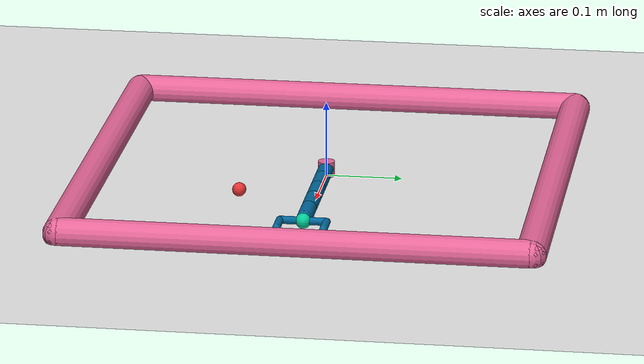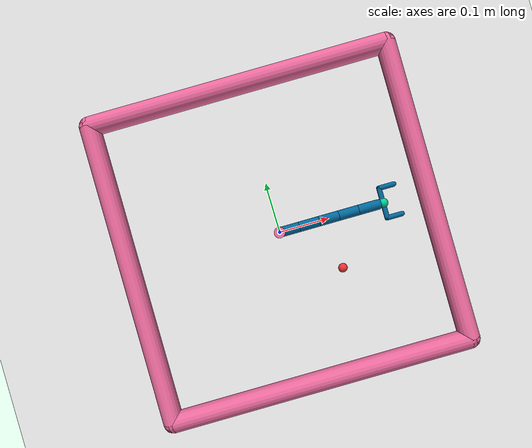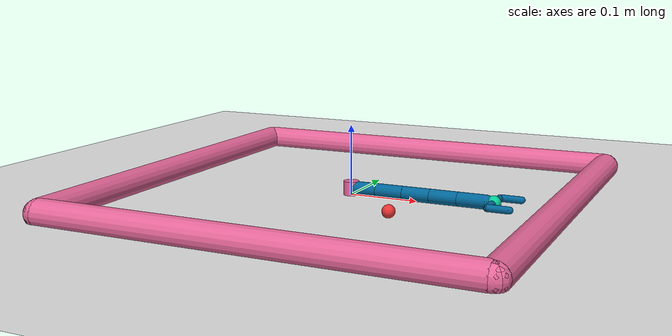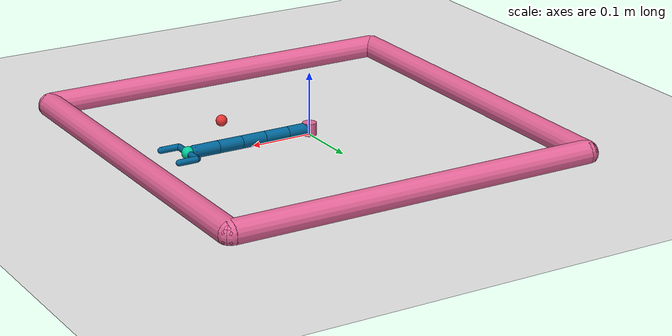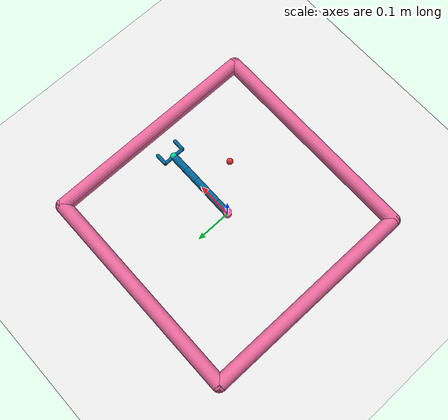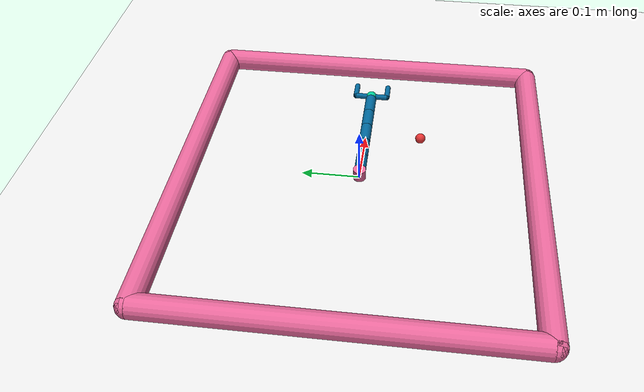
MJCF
<mujoco model="reacher-3">
	<compiler angle="radian" inertiafromgeom="true"/>
	<default>
		<joint armature="1" damping="1" limited="true"/>
		<geom contype="0" friction="1 0.1 0.1" rgba="0.7 0.7 0 1"/>
	</default>
	<option gravity="0 0 -9.81" integrator="RK4" timestep="0.01"/>
	<worldbody>
		<!-- Arena -->
		<geom conaffinity="0" contype="0" name="ground" pos="0 0 0" rgba="0.9 0.9 0.9 1" size="1 1 10" type="plane"/>
		<geom conaffinity="0" fromto="-.3 -.3 .01 .3 -.3 .01" name="sideS" rgba="0.9 0.4 0.6 1" size=".02" type="capsule"/>
		<geom conaffinity="0" fromto=" .3 -.3 .01 .3  .3 .01" name="sideE" rgba="0.9 0.4 0.6 1" size=".02" type="capsule"/>
		<geom conaffinity="0" fromto="-.3  .3 .01 .3  .3 .01" name="sideN" rgba="0.9 0.4 0.6 1" size=".02" type="capsule"/>
		<geom conaffinity="0" fromto="-.3 -.3 .01 -.3 .3 .01" name="sideW" rgba="0.9 0.4 0.6 1" size=".02" type="capsule"/>
		<!-- Arm -->
		<geom conaffinity="0" contype="0" fromto="0 0 0 0 0 0.02" name="root" rgba="0.9 0.4 0.6 1" size=".011" type="cylinder"/>
		<body name="body0" pos="0 0 .01">
			<geom fromto="0 0 0 0.04 0 0" name="link0" rgba="0.0 0.4 0.6 1" size=".01" type="capsule"/>
			<joint axis="0 0 1" limited="false" name="joint0" pos="0 0 0" type="hinge"/>
			<body name="body1" pos="0.04 0 0">
				<joint axis="0 0 1" limited="true" name="joint1" pos="0 0 0" range="-3.0 3.0" type="hinge"/>
				<geom fromto="0 0 0 0.04 0 0" name="link1" rgba="0.0 0.4 0.6 1" size=".01" type="capsule"/>
				<body name="body2" pos="0.04 0 0">
				    <joint axis="0 0 1" limited="true" name="joint2" pos="0 0 0" range="-3.0 3.0" type="hinge"/>
				    <geom fromto="0 0 0 0.04 0 0" name="link2" rgba="0.0 0.4 0.6 1" size=".01" type="capsule"/>
				    <body name="body3" pos="0.04 0 0">
				    	<joint axis="0 0 1" limited="true" name="joint3" pos="0 0 0" range="-3.0 3.0" type="hinge"/>
				    	<geom fromto="0 0 0 0.04 0 0" name="link3" rgba="0.0 0.4 0.6 1" size=".01" type="capsule"/>
				    	<body name="body4" pos="0.04 0 0">
					    	<joint axis="0 0 1" limited="true" name="joint4" pos="0 0 0" range="-3.0 3.0" type="hinge"/>
					    	<geom fromto="0 0 0 0.04 0 0" name="link4" rgba="0.0 0.4 0.6 1" size=".01" type="capsule"/>
						    <body name="fingertip" pos="0.05 0 0">
					<geom contype="0" name="fingertip" pos="0 0 0" rgba="0.0 0.8 0.6 1" size=".01" type="sphere"/>
					<body name="side1" pos="0 0 0">
						<geom fromto="0 0 0 0 0.03 0" name="side1-link" rgba="0.0 0.4 0.6 1" size=".005" type="capsule"/>
						<body name="side1-edge" pos="0 0 0">
							<geom fromto="0 0.03 0 0.03 0.03 0" name="side1-edge-link" rgba="0.0 0.4 0.6 1" size=".005" type="capsule"/>
					    </body>
					</body>
					<body name="side2" pos="0 0 0">
						<geom fromto="0 0 0 0 -0.03 0" name="side2-link" rgba="0.0 0.4 0.6 1" size=".005" type="capsule"/>
						<body name="side2-edge" pos="0 0 0">
							<geom fromto="0 -0.03 0 0.03 -0.03 0" name="side2-edge-link" rgba="0.0 0.4 0.6 1" size=".005" type="capsule"/>
					    </body>
					</body>
				</body>
			    		</body>
			    	</body>
			    	</body>
			    </body>
		</body>
		<!-- Target -->
		<!-- Stationary -->
        <!-- Randomized -->
        <body name="target" pos=".1 -.1 .01">
			<joint armature="0" axis="1 0 0" damping="0" limited="true" name="target_x" pos="0 0 0" range="-.27 .27" ref=".1" stiffness="0" type="slide"/>
			<joint armature="0" axis="0 1 0" damping="0" limited="true" name="target_y" pos="0 0 0" range="-.27 .27" ref="-.1" stiffness="0" type="slide"/>
			<geom conaffinity="0" contype="0" name="target" pos="0 0 0" rgba="0.9 0.2 0.2 1" size=".009" type="sphere"/>
		</body>
	</worldbody>
	<actuator>
		<motor ctrllimited="true" ctrlrange="-1.0 1.0" gear="200.0" joint="joint0"/>
		<motor ctrllimited="true" ctrlrange="-1.0 1.0" gear="200.0" joint="joint1"/>
		<motor ctrllimited="true" ctrlrange="-1.0 1.0" gear="200.0" joint="joint2"/>
		<motor ctrllimited="true" ctrlrange="-1.0 1.0" gear="200.0" joint="joint3"/>
		<motor ctrllimited="true" ctrlrange="-1.0 1.0" gear="200.0" joint="joint4"/>
	</actuator>
</mujoco>
